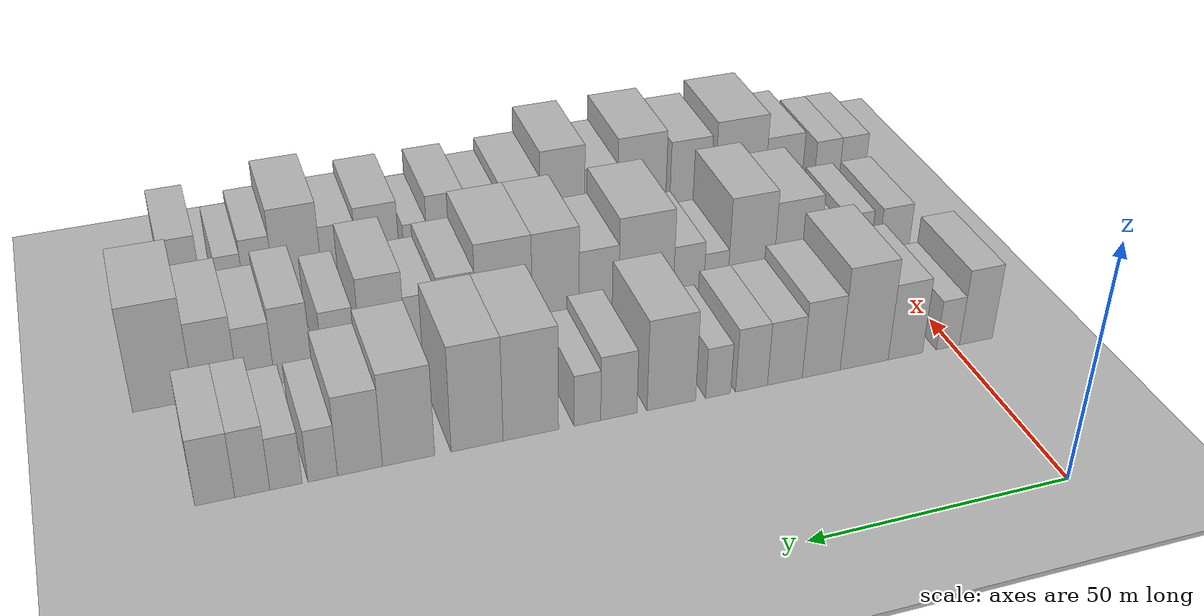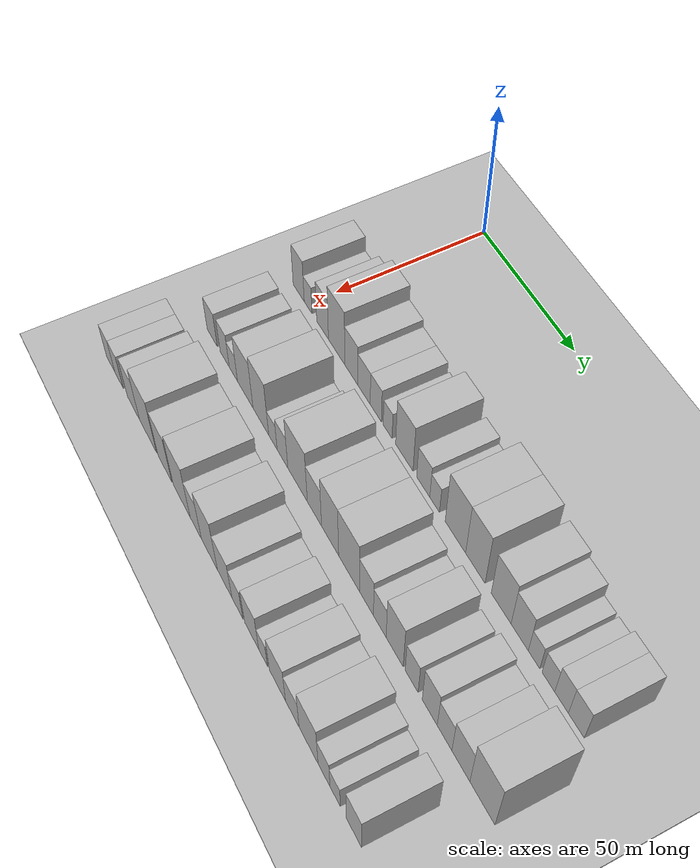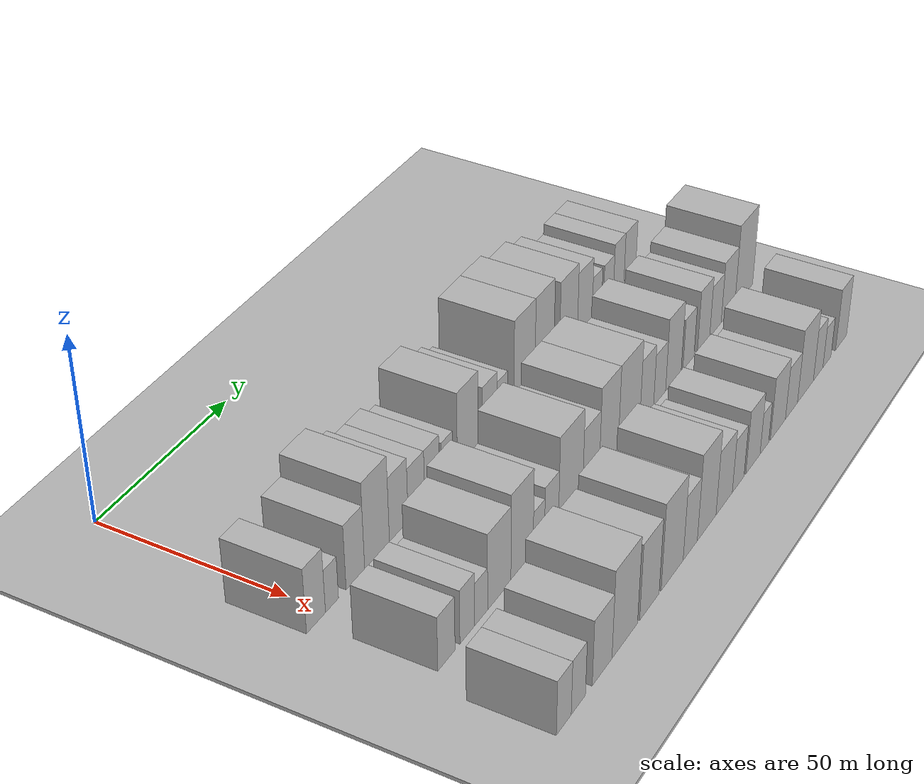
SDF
<sdf version="1.6">
 <world name="default">
  <include><name>ground_plane_1</name><uri>model://HANNAS_ground_plane</uri></include>
  <include>
   <name>ground_plane_2</name>
   <uri>model://HANNAS_ground_plane</uri>
   <pose>100 0 0  0 0 0</pose>
  </include>
  <model name="building_40">
   <static>1</static>
   <pose>50.0000 -4.5545 0 0.000000 0.000000 0.000000</pose>
   <link name="link">
    <pose>0 0 9.00 0 0 0</pose>
    <collision name="collision"><geometry><box><size>20.0000 7.2465 18.0000</size></box></geometry></collision>
    <visual name="visual">
     <cast_shadows>0</cast_shadows>
     <geometry><box><size>20.0000 7.2465 18.0000</size></box></geometry>
     <material>
      <script>
       <uri>model://HANNAS_wall/materials/scripts</uri>
       <uri>model://HANNAS_wall/materials/textures</uri>
       <name>vrc/HANNAS_wall</name>
      </script>
     </material>
    </visual>
   </link>
  </model>
  <model name="building_41">
   <static>1</static>
   <pose>50.0000 1.6012 0 0.000000 0.000000 0.000000</pose>
   <link name="link">
    <pose>0 0 6.00 0 0 0</pose>
    <collision name="collision"><geometry><box><size>20.0000 5.0649 12.0000</size></box></geometry></collision>
    <visual name="visual">
     <cast_shadows>0</cast_shadows>
     <geometry><box><size>20.0000 5.0649 12.0000</size></box></geometry>
     <material>
      <script>
       <uri>model://HANNAS_wall/materials/scripts</uri>
       <uri>model://HANNAS_wall/materials/textures</uri>
       <name>vrc/HANNAS_wall</name>
      </script>
     </material>
    </visual>
   </link>
  </model>
  <model name="building_42">
   <static>1</static>
   <pose>50.0000 10.8455 0 0.000000 0.000000 0.000000</pose>
   <link name="link">
    <pose>0 0 9.00 0 0 0</pose>
    <collision name="collision"><geometry><box><size>20.0000 7.4237 18.0000</size></box></geometry></collision>
    <visual name="visual">
     <cast_shadows>0</cast_shadows>
     <geometry><box><size>20.0000 7.4237 18.0000</size></box></geometry>
     <material>
      <script>
       <uri>model://HANNAS_wall/materials/scripts</uri>
       <uri>model://HANNAS_wall/materials/textures</uri>
       <name>vrc/HANNAS_wall</name>
      </script>
     </material>
    </visual>
   </link>
  </model>
  <model name="building_43">
   <static>1</static>
   <pose>50.0000 19.6524 0 0.000000 0.000000 0.000000</pose>
   <link name="link">
    <pose>0 0 12.00 0 0 0</pose>
    <collision name="collision"><geometry><box><size>20.0000 10.1900 24.0000</size></box></geometry></collision>
    <visual name="visual">
     <cast_shadows>0</cast_shadows>
     <geometry><box><size>20.0000 10.1900 24.0000</size></box></geometry>
     <material>
      <script>
       <uri>model://HANNAS_wall/materials/scripts</uri>
       <uri>model://HANNAS_wall/materials/textures</uri>
       <name>vrc/HANNAS_wall</name>
      </script>
     </material>
    </visual>
   </link>
  </model>
  <model name="building_44">
   <static>1</static>
   <pose>50.0000 28.7017 0 0.000000 0.000000 0.000000</pose>
   <link name="link">
    <pose>0 0 9.00 0 0 0</pose>
    <collision name="collision"><geometry><box><size>20.0000 7.9085 18.0000</size></box></geometry></collision>
    <visual name="visual">
     <cast_shadows>0</cast_shadows>
     <geometry><box><size>20.0000 7.9085 18.0000</size></box></geometry>
     <material>
      <script>
       <uri>model://HANNAS_wall/materials/scripts</uri>
       <uri>model://HANNAS_wall/materials/textures</uri>
       <name>vrc/HANNAS_wall</name>
      </script>
     </material>
    </visual>
   </link>
  </model>
  <model name="building_45">
   <static>1</static>
   <pose>50.0000 36.2491 0 0.000000 0.000000 0.000000</pose>
   <link name="link">
    <pose>0 0 7.50 0 0 0</pose>
    <collision name="collision"><geometry><box><size>20.0000 7.1863 15.0000</size></box></geometry></collision>
    <visual name="visual">
     <cast_shadows>0</cast_shadows>
     <geometry><box><size>20.0000 7.1863 15.0000</size></box></geometry>
     <material>
      <script>
       <uri>model://HANNAS_wall/materials/scripts</uri>
       <uri>model://HANNAS_wall/materials/textures</uri>
       <name>vrc/HANNAS_wall</name>
      </script>
     </material>
    </visual>
   </link>
  </model>
  <model name="building_46">
   <static>1</static>
   <pose>50.0000 43.0937 0 0.000000 0.000000 0.000000</pose>
   <link name="link">
    <pose>0 0 7.50 0 0 0</pose>
    <collision name="collision"><geometry><box><size>20.0000 6.5029 15.0000</size></box></geometry></collision>
    <visual name="visual">
     <cast_shadows>0</cast_shadows>
     <geometry><box><size>20.0000 6.5029 15.0000</size></box></geometry>
     <material>
      <script>
       <uri>model://HANNAS_wall/materials/scripts</uri>
       <uri>model://HANNAS_wall/materials/textures</uri>
       <name>vrc/HANNAS_wall</name>
      </script>
     </material>
    </visual>
   </link>
  </model>
  <model name="building_47">
   <static>1</static>
   <pose>50.0000 49.8750 0 0.000000 0.000000 0.000000</pose>
   <link name="link">
    <pose>0 0 6.00 0 0 0</pose>
    <collision name="collision"><geometry><box><size>20.0000 5.0597 12.0000</size></box></geometry></collision>
    <visual name="visual">
     <cast_shadows>0</cast_shadows>
     <geometry><box><size>20.0000 5.0597 12.0000</size></box></geometry>
     <material>
      <script>
       <uri>model://HANNAS_wall/materials/scripts</uri>
       <uri>model://HANNAS_wall/materials/textures</uri>
       <name>vrc/HANNAS_wall</name>
      </script>
     </material>
    </visual>
   </link>
  </model>
  <model name="building_48">
   <static>1</static>
   <pose>50.0000 59.2277 0 0.000000 0.000000 0.000000</pose>
   <link name="link">
    <pose>0 0 10.50 0 0 0</pose>
    <collision name="collision"><geometry><box><size>20.0000 9.6456 21.0000</size></box></geometry></collision>
    <visual name="visual">
     <cast_shadows>0</cast_shadows>
     <geometry><box><size>20.0000 9.6456 21.0000</size></box></geometry>
     <material>
      <script>
       <uri>model://HANNAS_wall/materials/scripts</uri>
       <uri>model://HANNAS_wall/materials/textures</uri>
       <name>vrc/HANNAS_wall</name>
      </script>
     </material>
    </visual>
   </link>
  </model>
  <model name="building_49">
   <static>1</static>
   <pose>50.0000 69.5857 0 0.000000 0.000000 0.000000</pose>
   <link name="link">
    <pose>0 0 7.50 0 0 0</pose>
    <collision name="collision"><geometry><box><size>20.0000 7.0703 15.0000</size></box></geometry></collision>
    <visual name="visual">
     <cast_shadows>0</cast_shadows>
     <geometry><box><size>20.0000 7.0703 15.0000</size></box></geometry>
     <material>
      <script>
       <uri>model://HANNAS_wall/materials/scripts</uri>
       <uri>model://HANNAS_wall/materials/textures</uri>
       <name>vrc/HANNAS_wall</name>
      </script>
     </material>
    </visual>
   </link>
  </model>
  <model name="building_50">
   <static>1</static>
   <pose>50.0000 75.6747 0 0.000000 0.000000 0.000000</pose>
   <link name="link">
    <pose>0 0 6.00 0 0 0</pose>
    <collision name="collision"><geometry><box><size>20.0000 5.1077 12.0000</size></box></geometry></collision>
    <visual name="visual">
     <cast_shadows>0</cast_shadows>
     <geometry><box><size>20.0000 5.1077 12.0000</size></box></geometry>
     <material>
      <script>
       <uri>model://HANNAS_wall/materials/scripts</uri>
       <uri>model://HANNAS_wall/materials/textures</uri>
       <name>vrc/HANNAS_wall</name>
      </script>
     </material>
    </visual>
   </link>
  </model>
  <model name="building_51">
   <static>1</static>
   <pose>50.0000 86.4801 0 0.000000 0.000000 0.000000</pose>
   <link name="link">
    <pose>0 0 12.00 0 0 0</pose>
    <collision name="collision"><geometry><box><size>20.0000 10.5031 24.0000</size></box></geometry></collision>
    <visual name="visual">
     <cast_shadows>0</cast_shadows>
     <geometry><box><size>20.0000 10.5031 24.0000</size></box></geometry>
     <material>
      <script>
       <uri>model://HANNAS_wall/materials/scripts</uri>
       <uri>model://HANNAS_wall/materials/textures</uri>
       <name>vrc/HANNAS_wall</name>
      </script>
     </material>
    </visual>
   </link>
  </model>
  <model name="building_52">
   <static>1</static>
   <pose>50.0000 96.5732 0 0.000000 0.000000 0.000000</pose>
   <link name="link">
    <pose>0 0 12.00 0 0 0</pose>
    <collision name="collision"><geometry><box><size>20.0000 9.6831 24.0000</size></box></geometry></collision>
    <visual name="visual">
     <cast_shadows>0</cast_shadows>
     <geometry><box><size>20.0000 9.6831 24.0000</size></box></geometry>
     <material>
      <script>
       <uri>model://HANNAS_wall/materials/scripts</uri>
       <uri>model://HANNAS_wall/materials/textures</uri>
       <name>vrc/HANNAS_wall</name>
      </script>
     </material>
    </visual>
   </link>
  </model>
  <model name="building_53">
   <static>1</static>
   <pose>50.0000 109.1730 0 0.000000 0.000000 0.000000</pose>
   <link name="link">
    <pose>0 0 10.50 0 0 0</pose>
    <collision name="collision"><geometry><box><size>20.0000 9.5166 21.0000</size></box></geometry></collision>
    <visual name="visual">
     <cast_shadows>0</cast_shadows>
     <geometry><box><size>20.0000 9.5166 21.0000</size></box></geometry>
     <material>
      <script>
       <uri>model://HANNAS_wall/materials/scripts</uri>
       <uri>model://HANNAS_wall/materials/textures</uri>
       <name>vrc/HANNAS_wall</name>
      </script>
     </material>
    </visual>
   </link>
  </model>
  <model name="building_54">
   <static>1</static>
   <pose>50.0000 117.9584 0 0.000000 0.000000 0.000000</pose>
   <link name="link">
    <pose>0 0 9.00 0 0 0</pose>
    <collision name="collision"><geometry><box><size>20.0000 8.0541 18.0000</size></box></geometry></collision>
    <visual name="visual">
     <cast_shadows>0</cast_shadows>
     <geometry><box><size>20.0000 8.0541 18.0000</size></box></geometry>
     <material>
      <script>
       <uri>model://HANNAS_wall/materials/scripts</uri>
       <uri>model://HANNAS_wall/materials/textures</uri>
       <name>vrc/HANNAS_wall</name>
      </script>
     </material>
    </visual>
   </link>
  </model>
  <model name="building_55">
   <static>1</static>
   <pose>50.0000 124.6150 0 0.000000 0.000000 0.000000</pose>
   <link name="link">
    <pose>0 0 6.00 0 0 0</pose>
    <collision name="collision"><geometry><box><size>20.0000 5.2591 12.0000</size></box></geometry></collision>
    <visual name="visual">
     <cast_shadows>0</cast_shadows>
     <geometry><box><size>20.0000 5.2591 12.0000</size></box></geometry>
     <material>
      <script>
       <uri>model://HANNAS_wall/materials/scripts</uri>
       <uri>model://HANNAS_wall/materials/textures</uri>
       <name>vrc/HANNAS_wall</name>
      </script>
     </material>
    </visual>
   </link>
  </model>
  <model name="building_56">
   <static>1</static>
   <pose>50.0000 131.0785 0 0.000000 0.000000 0.000000</pose>
   <link name="link">
    <pose>0 0 6.00 0 0 0</pose>
    <collision name="collision"><geometry><box><size>20.0000 5.6680 12.0000</size></box></geometry></collision>
    <visual name="visual">
     <cast_shadows>0</cast_shadows>
     <geometry><box><size>20.0000 5.6680 12.0000</size></box></geometry>
     <material>
      <script>
       <uri>model://HANNAS_wall/materials/scripts</uri>
       <uri>model://HANNAS_wall/materials/textures</uri>
       <name>vrc/HANNAS_wall</name>
      </script>
     </material>
    </visual>
   </link>
  </model>
  <model name="building_57">
   <static>1</static>
   <pose>50.0000 136.9434 0 0.000000 0.000000 0.000000</pose>
   <link name="link">
    <pose>0 0 7.50 0 0 0</pose>
    <collision name="collision"><geometry><box><size>20.0000 6.0618 15.0000</size></box></geometry></collision>
    <visual name="visual">
     <cast_shadows>0</cast_shadows>
     <geometry><box><size>20.0000 6.0618 15.0000</size></box></geometry>
     <material>
      <script>
       <uri>model://HANNAS_wall/materials/scripts</uri>
       <uri>model://HANNAS_wall/materials/textures</uri>
       <name>vrc/HANNAS_wall</name>
      </script>
     </material>
    </visual>
   </link>
  </model>
  <model name="building_58">
   <static>1</static>
   <pose>50.0000 143.4078 0 0.000000 0.000000 0.000000</pose>
   <link name="link">
    <pose>0 0 7.50 0 0 0</pose>
    <collision name="collision"><geometry><box><size>20.0000 6.8670 15.0000</size></box></geometry></collision>
    <visual name="visual">
     <cast_shadows>0</cast_shadows>
     <geometry><box><size>20.0000 6.8670 15.0000</size></box></geometry>
     <material>
      <script>
       <uri>model://HANNAS_wall/materials/scripts</uri>
       <uri>model://HANNAS_wall/materials/textures</uri>
       <name>vrc/HANNAS_wall</name>
      </script>
     </material>
    </visual>
   </link>
  </model>
  <model name="building_115">
   <static>1</static>
   <pose>79.0000 -1.2076 0 0.000000 0.000000 0.000000</pose>
   <link name="link">
    <pose>0 0 7.50 0 0 0</pose>
    <collision name="collision"><geometry><box><size>20.0000 6.9950 15.0000</size></box></geometry></collision>
    <visual name="visual">
     <cast_shadows>0</cast_shadows>
     <geometry><box><size>20.0000 6.9950 15.0000</size></box></geometry>
     <material>
      <script>
       <uri>model://HANNAS_wall/materials/scripts</uri>
       <uri>model://HANNAS_wall/materials/textures</uri>
       <name>vrc/HANNAS_wall</name>
      </script>
     </material>
    </visual>
   </link>
  </model>
  <model name="building_116">
   <static>1</static>
   <pose>79.0000 7.3624 0 0.000000 0.000000 0.000000</pose>
   <link name="link">
    <pose>0 0 7.50 0 0 0</pose>
    <collision name="collision"><geometry><box><size>20.0000 6.1451 15.0000</size></box></geometry></collision>
    <visual name="visual">
     <cast_shadows>0</cast_shadows>
     <geometry><box><size>20.0000 6.1451 15.0000</size></box></geometry>
     <material>
      <script>
       <uri>model://HANNAS_wall/materials/scripts</uri>
       <uri>model://HANNAS_wall/materials/textures</uri>
       <name>vrc/HANNAS_wall</name>
      </script>
     </material>
    </visual>
   </link>
  </model>
  <model name="building_117">
   <static>1</static>
   <pose>79.0000 13.1839 0 0.000000 0.000000 0.000000</pose>
   <link name="link">
    <pose>0 0 6.00 0 0 0</pose>
    <collision name="collision"><geometry><box><size>20.0000 5.4977 12.0000</size></box></geometry></collision>
    <visual name="visual">
     <cast_shadows>0</cast_shadows>
     <geometry><box><size>20.0000 5.4977 12.0000</size></box></geometry>
     <material>
      <script>
       <uri>model://HANNAS_wall/materials/scripts</uri>
       <uri>model://HANNAS_wall/materials/textures</uri>
       <name>vrc/HANNAS_wall</name>
      </script>
     </material>
    </visual>
   </link>
  </model>
  <model name="building_118">
   <static>1</static>
   <pose>79.0000 21.0036 0 0.000000 0.000000 0.000000</pose>
   <link name="link">
    <pose>0 0 10.50 0 0 0</pose>
    <collision name="collision"><geometry><box><size>20.0000 10.1417 21.0000</size></box></geometry></collision>
    <visual name="visual">
     <cast_shadows>0</cast_shadows>
     <geometry><box><size>20.0000 10.1417 21.0000</size></box></geometry>
     <material>
      <script>
       <uri>model://HANNAS_wall/materials/scripts</uri>
       <uri>model://HANNAS_wall/materials/textures</uri>
       <name>vrc/HANNAS_wall</name>
      </script>
     </material>
    </visual>
   </link>
  </model>
  <model name="building_119">
   <static>1</static>
   <pose>79.0000 31.0700 0 0.000000 0.000000 0.000000</pose>
   <link name="link">
    <pose>0 0 12.00 0 0 0</pose>
    <collision name="collision"><geometry><box><size>20.0000 9.9912 24.0000</size></box></geometry></collision>
    <visual name="visual">
     <cast_shadows>0</cast_shadows>
     <geometry><box><size>20.0000 9.9912 24.0000</size></box></geometry>
     <material>
      <script>
       <uri>model://HANNAS_wall/materials/scripts</uri>
       <uri>model://HANNAS_wall/materials/textures</uri>
       <name>vrc/HANNAS_wall</name>
      </script>
     </material>
    </visual>
   </link>
  </model>
  <model name="building_120">
   <static>1</static>
   <pose>79.0000 38.6717 0 0.000000 0.000000 0.000000</pose>
   <link name="link">
    <pose>0 0 6.00 0 0 0</pose>
    <collision name="collision"><geometry><box><size>20.0000 5.2122 12.0000</size></box></geometry></collision>
    <visual name="visual">
     <cast_shadows>0</cast_shadows>
     <geometry><box><size>20.0000 5.2122 12.0000</size></box></geometry>
     <material>
      <script>
       <uri>model://HANNAS_wall/materials/scripts</uri>
       <uri>model://HANNAS_wall/materials/textures</uri>
       <name>vrc/HANNAS_wall</name>
      </script>
     </material>
    </visual>
   </link>
  </model>
  <model name="building_121">
   <static>1</static>
   <pose>79.0000 44.5688 0 0.000000 0.000000 0.000000</pose>
   <link name="link">
    <pose>0 0 7.50 0 0 0</pose>
    <collision name="collision"><geometry><box><size>20.0000 6.5822 15.0000</size></box></geometry></collision>
    <visual name="visual">
     <cast_shadows>0</cast_shadows>
     <geometry><box><size>20.0000 6.5822 15.0000</size></box></geometry>
     <material>
      <script>
       <uri>model://HANNAS_wall/materials/scripts</uri>
       <uri>model://HANNAS_wall/materials/textures</uri>
       <name>vrc/HANNAS_wall</name>
      </script>
     </material>
    </visual>
   </link>
  </model>
  <model name="building_122">
   <static>1</static>
   <pose>79.0000 53.6694 0 0.000000 0.000000 0.000000</pose>
   <link name="link">
    <pose>0 0 12.00 0 0 0</pose>
    <collision name="collision"><geometry><box><size>20.0000 11.6189 24.0000</size></box></geometry></collision>
    <visual name="visual">
     <cast_shadows>0</cast_shadows>
     <geometry><box><size>20.0000 11.6189 24.0000</size></box></geometry>
     <material>
      <script>
       <uri>model://HANNAS_wall/materials/scripts</uri>
       <uri>model://HANNAS_wall/materials/textures</uri>
       <name>vrc/HANNAS_wall</name>
      </script>
     </material>
    </visual>
   </link>
  </model>
  <model name="building_123">
   <static>1</static>
   <pose>79.0000 63.5984 0 0.000000 0.000000 0.000000</pose>
   <link name="link">
    <pose>0 0 9.00 0 0 0</pose>
    <collision name="collision"><geometry><box><size>20.0000 8.2392 18.0000</size></box></geometry></collision>
    <visual name="visual">
     <cast_shadows>0</cast_shadows>
     <geometry><box><size>20.0000 8.2392 18.0000</size></box></geometry>
     <material>
      <script>
       <uri>model://HANNAS_wall/materials/scripts</uri>
       <uri>model://HANNAS_wall/materials/textures</uri>
       <name>vrc/HANNAS_wall</name>
      </script>
     </material>
    </visual>
   </link>
  </model>
  <model name="building_124">
   <static>1</static>
   <pose>79.0000 72.5404 0 0.000000 0.000000 0.000000</pose>
   <link name="link">
    <pose>0 0 12.00 0 0 0</pose>
    <collision name="collision"><geometry><box><size>20.0000 9.6448 24.0000</size></box></geometry></collision>
    <visual name="visual">
     <cast_shadows>0</cast_shadows>
     <geometry><box><size>20.0000 9.6448 24.0000</size></box></geometry>
     <material>
      <script>
       <uri>model://HANNAS_wall/materials/scripts</uri>
       <uri>model://HANNAS_wall/materials/textures</uri>
       <name>vrc/HANNAS_wall</name>
      </script>
     </material>
    </visual>
   </link>
  </model>
  <model name="building_125">
   <static>1</static>
   <pose>79.0000 83.0454 0 0.000000 0.000000 0.000000</pose>
   <link name="link">
    <pose>0 0 12.00 0 0 0</pose>
    <collision name="collision"><geometry><box><size>20.0000 11.3651 24.0000</size></box></geometry></collision>
    <visual name="visual">
     <cast_shadows>0</cast_shadows>
     <geometry><box><size>20.0000 11.3651 24.0000</size></box></geometry>
     <material>
      <script>
       <uri>model://HANNAS_wall/materials/scripts</uri>
       <uri>model://HANNAS_wall/materials/textures</uri>
       <name>vrc/HANNAS_wall</name>
      </script>
     </material>
    </visual>
   </link>
  </model>
  <model name="building_126">
   <static>1</static>
   <pose>79.0000 92.4609 0 0.000000 0.000000 0.000000</pose>
   <link name="link">
    <pose>0 0 9.00 0 0 0</pose>
    <collision name="collision"><geometry><box><size>20.0000 7.4660 18.0000</size></box></geometry></collision>
    <visual name="visual">
     <cast_shadows>0</cast_shadows>
     <geometry><box><size>20.0000 7.4660 18.0000</size></box></geometry>
     <material>
      <script>
       <uri>model://HANNAS_wall/materials/scripts</uri>
       <uri>model://HANNAS_wall/materials/textures</uri>
       <name>vrc/HANNAS_wall</name>
      </script>
     </material>
    </visual>
   </link>
  </model>
  <model name="building_127">
   <static>1</static>
   <pose>79.0000 99.4996 0 0.000000 0.000000 0.000000</pose>
   <link name="link">
    <pose>0 0 7.50 0 0 0</pose>
    <collision name="collision"><geometry><box><size>20.0000 6.6114 15.0000</size></box></geometry></collision>
    <visual name="visual">
     <cast_shadows>0</cast_shadows>
     <geometry><box><size>20.0000 6.6114 15.0000</size></box></geometry>
     <material>
      <script>
       <uri>model://HANNAS_wall/materials/scripts</uri>
       <uri>model://HANNAS_wall/materials/textures</uri>
       <name>vrc/HANNAS_wall</name>
      </script>
     </material>
    </visual>
   </link>
  </model>
  <model name="building_128">
   <static>1</static>
   <pose>79.0000 107.1549 0 0.000000 0.000000 0.000000</pose>
   <link name="link">
    <pose>0 0 10.50 0 0 0</pose>
    <collision name="collision"><geometry><box><size>20.0000 8.6992 21.0000</size></box></geometry></collision>
    <visual name="visual">
     <cast_shadows>0</cast_shadows>
     <geometry><box><size>20.0000 8.6992 21.0000</size></box></geometry>
     <material>
      <script>
       <uri>model://HANNAS_wall/materials/scripts</uri>
       <uri>model://HANNAS_wall/materials/textures</uri>
       <name>vrc/HANNAS_wall</name>
      </script>
     </material>
    </visual>
   </link>
  </model>
  <model name="building_129">
   <static>1</static>
   <pose>79.0000 115.7135 0 0.000000 0.000000 0.000000</pose>
   <link name="link">
    <pose>0 0 7.50 0 0 0</pose>
    <collision name="collision"><geometry><box><size>20.0000 6.4180 15.0000</size></box></geometry></collision>
    <visual name="visual">
     <cast_shadows>0</cast_shadows>
     <geometry><box><size>20.0000 6.4180 15.0000</size></box></geometry>
     <material>
      <script>
       <uri>model://HANNAS_wall/materials/scripts</uri>
       <uri>model://HANNAS_wall/materials/textures</uri>
       <name>vrc/HANNAS_wall</name>
      </script>
     </material>
    </visual>
   </link>
  </model>
  <model name="building_130">
   <static>1</static>
   <pose>79.0000 124.5442 0 0.000000 0.000000 0.000000</pose>
   <link name="link">
    <pose>0 0 9.00 0 0 0</pose>
    <collision name="collision"><geometry><box><size>20.0000 7.2435 18.0000</size></box></geometry></collision>
    <visual name="visual">
     <cast_shadows>0</cast_shadows>
     <geometry><box><size>20.0000 7.2435 18.0000</size></box></geometry>
     <material>
      <script>
       <uri>model://HANNAS_wall/materials/scripts</uri>
       <uri>model://HANNAS_wall/materials/textures</uri>
       <name>vrc/HANNAS_wall</name>
      </script>
     </material>
    </visual>
   </link>
  </model>
  <model name="building_131">
   <static>1</static>
   <pose>79.0000 131.6194 0 0.000000 0.000000 0.000000</pose>
   <link name="link">
    <pose>0 0 7.50 0 0 0</pose>
    <collision name="collision"><geometry><box><size>20.0000 6.9069 15.0000</size></box></geometry></collision>
    <visual name="visual">
     <cast_shadows>0</cast_shadows>
     <geometry><box><size>20.0000 6.9069 15.0000</size></box></geometry>
     <material>
      <script>
       <uri>model://HANNAS_wall/materials/scripts</uri>
       <uri>model://HANNAS_wall/materials/textures</uri>
       <name>vrc/HANNAS_wall</name>
      </script>
     </material>
    </visual>
   </link>
  </model>
  <model name="building_132">
   <static>1</static>
   <pose>79.0000 139.2200 0 0.000000 0.000000 0.000000</pose>
   <link name="link">
    <pose>0 0 9.00 0 0 0</pose>
    <collision name="collision"><geometry><box><size>20.0000 8.2944 18.0000</size></box></geometry></collision>
    <visual name="visual">
     <cast_shadows>0</cast_shadows>
     <geometry><box><size>20.0000 8.2944 18.0000</size></box></geometry>
     <material>
      <script>
       <uri>model://HANNAS_wall/materials/scripts</uri>
       <uri>model://HANNAS_wall/materials/textures</uri>
       <name>vrc/HANNAS_wall</name>
      </script>
     </material>
    </visual>
   </link>
  </model>
  <model name="building_133">
   <static>1</static>
   <pose>79.0000 148.9715 0 0.000000 0.000000 0.000000</pose>
   <link name="link">
    <pose>0 0 12.00 0 0 0</pose>
    <collision name="collision"><geometry><box><size>20.0000 11.2086 24.0000</size></box></geometry></collision>
    <visual name="visual">
     <cast_shadows>0</cast_shadows>
     <geometry><box><size>20.0000 11.2086 24.0000</size></box></geometry>
     <material>
      <script>
       <uri>model://HANNAS_wall/materials/scripts</uri>
       <uri>model://HANNAS_wall/materials/textures</uri>
       <name>vrc/HANNAS_wall</name>
      </script>
     </material>
    </visual>
   </link>
  </model>
  <model name="building_189">
   <static>1</static>
   <pose>108.0000 -5.8911 0 0.000000 0.000000 0.000000</pose>
   <link name="link">
    <pose>0 0 7.50 0 0 0</pose>
    <collision name="collision"><geometry><box><size>20.0000 6.3352 15.0000</size></box></geometry></collision>
    <visual name="visual">
     <cast_shadows>0</cast_shadows>
     <geometry><box><size>20.0000 6.3352 15.0000</size></box></geometry>
     <material>
      <script>
       <uri>model://HANNAS_wall/materials/scripts</uri>
       <uri>model://HANNAS_wall/materials/textures</uri>
       <name>vrc/HANNAS_wall</name>
      </script>
     </material>
    </visual>
   </link>
  </model>
  <model name="building_190">
   <static>1</static>
   <pose>108.0000 0.3628 0 0.000000 0.000000 0.000000</pose>
   <link name="link">
    <pose>0 0 7.50 0 0 0</pose>
    <collision name="collision"><geometry><box><size>20.0000 6.1725 15.0000</size></box></geometry></collision>
    <visual name="visual">
     <cast_shadows>0</cast_shadows>
     <geometry><box><size>20.0000 6.1725 15.0000</size></box></geometry>
     <material>
      <script>
       <uri>model://HANNAS_wall/materials/scripts</uri>
       <uri>model://HANNAS_wall/materials/textures</uri>
       <name>vrc/HANNAS_wall</name>
      </script>
     </material>
    </visual>
   </link>
  </model>
  <model name="building_191">
   <static>1</static>
   <pose>108.0000 10.8819 0 0.000000 0.000000 0.000000</pose>
   <link name="link">
    <pose>0 0 9.00 0 0 0</pose>
    <collision name="collision"><geometry><box><size>20.0000 8.8657 18.0000</size></box></geometry></collision>
    <visual name="visual">
     <cast_shadows>0</cast_shadows>
     <geometry><box><size>20.0000 8.8657 18.0000</size></box></geometry>
     <material>
      <script>
       <uri>model://HANNAS_wall/materials/scripts</uri>
       <uri>model://HANNAS_wall/materials/textures</uri>
       <name>vrc/HANNAS_wall</name>
      </script>
     </material>
    </visual>
   </link>
  </model>
  <model name="building_192">
   <static>1</static>
   <pose>108.0000 21.2662 0 0.000000 0.000000 0.000000</pose>
   <link name="link">
    <pose>0 0 12.00 0 0 0</pose>
    <collision name="collision"><geometry><box><size>20.0000 11.9030 24.0000</size></box></geometry></collision>
    <visual name="visual">
     <cast_shadows>0</cast_shadows>
     <geometry><box><size>20.0000 11.9030 24.0000</size></box></geometry>
     <material>
      <script>
       <uri>model://HANNAS_wall/materials/scripts</uri>
       <uri>model://HANNAS_wall/materials/textures</uri>
       <name>vrc/HANNAS_wall</name>
      </script>
     </material>
    </visual>
   </link>
  </model>
  <model name="building_193">
   <static>1</static>
   <pose>108.0000 32.9085 0 0.000000 0.000000 0.000000</pose>
   <link name="link">
    <pose>0 0 10.50 0 0 0</pose>
    <collision name="collision"><geometry><box><size>20.0000 9.3816 21.0000</size></box></geometry></collision>
    <visual name="visual">
     <cast_shadows>0</cast_shadows>
     <geometry><box><size>20.0000 9.3816 21.0000</size></box></geometry>
     <material>
      <script>
       <uri>model://HANNAS_wall/materials/scripts</uri>
       <uri>model://HANNAS_wall/materials/textures</uri>
       <name>vrc/HANNAS_wall</name>
      </script>
     </material>
    </visual>
   </link>
  </model>
  <model name="building_194">
   <static>1</static>
   <pose>108.0000 44.0989 0 0.000000 0.000000 0.000000</pose>
   <link name="link">
    <pose>0 0 12.00 0 0 0</pose>
    <collision name="collision"><geometry><box><size>20.0000 10.9993 24.0000</size></box></geometry></collision>
    <visual name="visual">
     <cast_shadows>0</cast_shadows>
     <geometry><box><size>20.0000 10.9993 24.0000</size></box></geometry>
     <material>
      <script>
       <uri>model://HANNAS_wall/materials/scripts</uri>
       <uri>model://HANNAS_wall/materials/textures</uri>
       <name>vrc/HANNAS_wall</name>
      </script>
     </material>
    </visual>
   </link>
  </model>
  <model name="building_195">
   <static>1</static>
   <pose>108.0000 53.2480 0 0.000000 0.000000 0.000000</pose>
   <link name="link">
    <pose>0 0 9.00 0 0 0</pose>
    <collision name="collision"><geometry><box><size>20.0000 7.2990 18.0000</size></box></geometry></collision>
    <visual name="visual">
     <cast_shadows>0</cast_shadows>
     <geometry><box><size>20.0000 7.2990 18.0000</size></box></geometry>
     <material>
      <script>
       <uri>model://HANNAS_wall/materials/scripts</uri>
       <uri>model://HANNAS_wall/materials/textures</uri>
       <name>vrc/HANNAS_wall</name>
      </script>
     </material>
    </visual>
   </link>
  </model>
  <model name="building_196">
   <static>1</static>
   <pose>108.0000 61.8257 0 0.000000 0.000000 0.000000</pose>
   <link name="link">
    <pose>0 0 12.00 0 0 0</pose>
    <collision name="collision"><geometry><box><size>20.0000 9.8564 24.0000</size></box></geometry></collision>
    <visual name="visual">
     <cast_shadows>0</cast_shadows>
     <geometry><box><size>20.0000 9.8564 24.0000</size></box></geometry>
     <material>
      <script>
       <uri>model://HANNAS_wall/materials/scripts</uri>
       <uri>model://HANNAS_wall/materials/textures</uri>
       <name>vrc/HANNAS_wall</name>
      </script>
     </material>
    </visual>
   </link>
  </model>
  <model name="building_197">
   <static>1</static>
   <pose>108.0000 71.1805 0 0.000000 0.000000 0.000000</pose>
   <link name="link">
    <pose>0 0 9.00 0 0 0</pose>
    <collision name="collision"><geometry><box><size>20.0000 8.8531 18.0000</size></box></geometry></collision>
    <visual name="visual">
     <cast_shadows>0</cast_shadows>
     <geometry><box><size>20.0000 8.8531 18.0000</size></box></geometry>
     <material>
      <script>
       <uri>model://HANNAS_wall/materials/scripts</uri>
       <uri>model://HANNAS_wall/materials/textures</uri>
       <name>vrc/HANNAS_wall</name>
      </script>
     </material>
    </visual>
   </link>
  </model>
  <model name="building_198">
   <static>1</static>
   <pose>108.0000 78.8661 0 0.000000 0.000000 0.000000</pose>
   <link name="link">
    <pose>0 0 7.50 0 0 0</pose>
    <collision name="collision"><geometry><box><size>20.0000 6.5181 15.0000</size></box></geometry></collision>
    <visual name="visual">
     <cast_shadows>0</cast_shadows>
     <geometry><box><size>20.0000 6.5181 15.0000</size></box></geometry>
     <material>
      <script>
       <uri>model://HANNAS_wall/materials/scripts</uri>
       <uri>model://HANNAS_wall/materials/textures</uri>
       <name>vrc/HANNAS_wall</name>
      </script>
     </material>
    </visual>
   </link>
  </model>
  <model name="building_199">
   <static>1</static>
   <pose>108.0000 87.1940 0 0.000000 0.000000 0.000000</pose>
   <link name="link">
    <pose>0 0 9.00 0 0 0</pose>
    <collision name="collision"><geometry><box><size>20.0000 8.1375 18.0000</size></box></geometry></collision>
    <visual name="visual">
     <cast_shadows>0</cast_shadows>
     <geometry><box><size>20.0000 8.1375 18.0000</size></box></geometry>
     <material>
      <script>
       <uri>model://HANNAS_wall/materials/scripts</uri>
       <uri>model://HANNAS_wall/materials/textures</uri>
       <name>vrc/HANNAS_wall</name>
      </script>
     </material>
    </visual>
   </link>
  </model>
  <model name="building_200">
   <static>1</static>
   <pose>108.0000 93.7493 0 0.000000 0.000000 0.000000</pose>
   <link name="link">
    <pose>0 0 6.00 0 0 0</pose>
    <collision name="collision"><geometry><box><size>20.0000 4.9732 12.0000</size></box></geometry></collision>
    <visual name="visual">
     <cast_shadows>0</cast_shadows>
     <geometry><box><size>20.0000 4.9732 12.0000</size></box></geometry>
     <material>
      <script>
       <uri>model://HANNAS_wall/materials/scripts</uri>
       <uri>model://HANNAS_wall/materials/textures</uri>
       <name>vrc/HANNAS_wall</name>
      </script>
     </material>
    </visual>
   </link>
  </model>
  <model name="building_201">
   <static>1</static>
   <pose>108.0000 101.7117 0 0.000000 0.000000 0.000000</pose>
   <link name="link">
    <pose>0 0 9.00 0 0 0</pose>
    <collision name="collision"><geometry><box><size>20.0000 8.9515 18.0000</size></box></geometry></collision>
    <visual name="visual">
     <cast_shadows>0</cast_shadows>
     <geometry><box><size>20.0000 8.9515 18.0000</size></box></geometry>
     <material>
      <script>
       <uri>model://HANNAS_wall/materials/scripts</uri>
       <uri>model://HANNAS_wall/materials/textures</uri>
       <name>vrc/HANNAS_wall</name>
      </script>
     </material>
    </visual>
   </link>
  </model>
  <model name="building_202">
   <static>1</static>
   <pose>108.0000 109.8501 0 0.000000 0.000000 0.000000</pose>
   <link name="link">
    <pose>0 0 7.50 0 0 0</pose>
    <collision name="collision"><geometry><box><size>20.0000 7.3253 15.0000</size></box></geometry></collision>
    <visual name="visual">
     <cast_shadows>0</cast_shadows>
     <geometry><box><size>20.0000 7.3253 15.0000</size></box></geometry>
     <material>
      <script>
       <uri>model://HANNAS_wall/materials/scripts</uri>
       <uri>model://HANNAS_wall/materials/textures</uri>
       <name>vrc/HANNAS_wall</name>
      </script>
     </material>
    </visual>
   </link>
  </model>
  <model name="building_203">
   <static>1</static>
   <pose>108.0000 118.4600 0 0.000000 0.000000 0.000000</pose>
   <link name="link">
    <pose>0 0 10.50 0 0 0</pose>
    <collision name="collision"><geometry><box><size>20.0000 9.8946 21.0000</size></box></geometry></collision>
    <visual name="visual">
     <cast_shadows>0</cast_shadows>
     <geometry><box><size>20.0000 9.8946 21.0000</size></box></geometry>
     <material>
      <script>
       <uri>model://HANNAS_wall/materials/scripts</uri>
       <uri>model://HANNAS_wall/materials/textures</uri>
       <name>vrc/HANNAS_wall</name>
      </script>
     </material>
    </visual>
   </link>
  </model>
  <model name="building_204">
   <static>1</static>
   <pose>108.0000 126.4330 0 0.000000 0.000000 0.000000</pose>
   <link name="link">
    <pose>0 0 7.50 0 0 0</pose>
    <collision name="collision"><geometry><box><size>20.0000 6.0513 15.0000</size></box></geometry></collision>
    <visual name="visual">
     <cast_shadows>0</cast_shadows>
     <geometry><box><size>20.0000 6.0513 15.0000</size></box></geometry>
     <material>
      <script>
       <uri>model://HANNAS_wall/materials/scripts</uri>
       <uri>model://HANNAS_wall/materials/textures</uri>
       <name>vrc/HANNAS_wall</name>
      </script>
     </material>
    </visual>
   </link>
  </model>
  <model name="building_205">
   <static>1</static>
   <pose>108.0000 132.0570 0 0.000000 0.000000 0.000000</pose>
   <link name="link">
    <pose>0 0 6.00 0 0 0</pose>
    <collision name="collision"><geometry><box><size>20.0000 5.1968 12.0000</size></box></geometry></collision>
    <visual name="visual">
     <cast_shadows>0</cast_shadows>
     <geometry><box><size>20.0000 5.1968 12.0000</size></box></geometry>
     <material>
      <script>
       <uri>model://HANNAS_wall/materials/scripts</uri>
       <uri>model://HANNAS_wall/materials/textures</uri>
       <name>vrc/HANNAS_wall</name>
      </script>
     </material>
    </visual>
   </link>
  </model>
  <model name="building_206">
   <static>1</static>
   <pose>108.0000 141.3279 0 0.000000 0.000000 0.000000</pose>
   <link name="link">
    <pose>0 0 9.00 0 0 0</pose>
    <collision name="collision"><geometry><box><size>20.0000 7.3449 18.0000</size></box></geometry></collision>
    <visual name="visual">
     <cast_shadows>0</cast_shadows>
     <geometry><box><size>20.0000 7.3449 18.0000</size></box></geometry>
     <material>
      <script>
       <uri>model://HANNAS_wall/materials/scripts</uri>
       <uri>model://HANNAS_wall/materials/textures</uri>
       <name>vrc/HANNAS_wall</name>
      </script>
     </material>
    </visual>
   </link>
  </model>
 </world>
</sdf>
